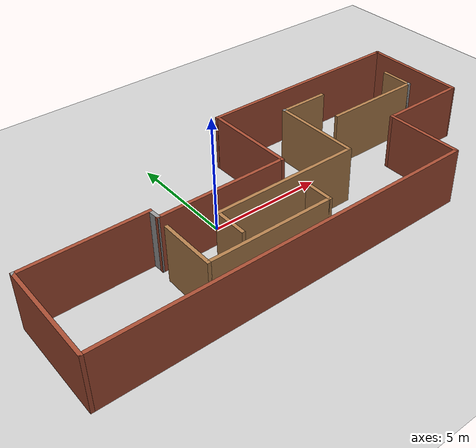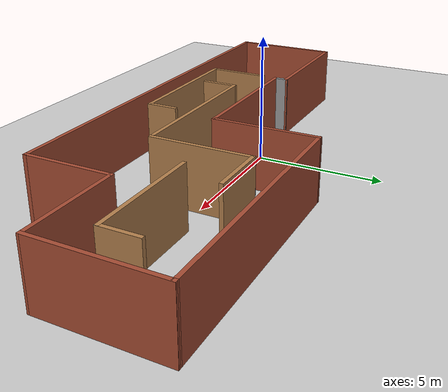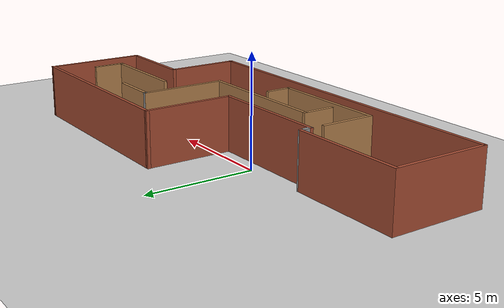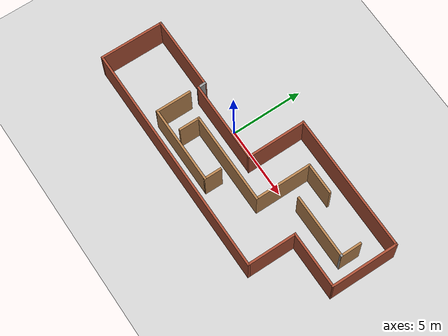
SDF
<sdf version="1.7">
 <world name="default">
  <light name="sun" type="directional">
   <pose>0 0 10 0 -0 0</pose>
   <diffuse>0.8 0.8 0.8 1</diffuse>
   <specular>0.2 0.2 0.2 1</specular>
   <attenuation>
    <range>1000</range>
    <constant>0.9</constant>
    <linear>0.01</linear>
    <quadratic>0.001</quadratic>
   </attenuation>
   <direction>-0.5 0.1 -0.9</direction>
   <spot><inner_angle>0</inner_angle><outer_angle>0</outer_angle><falloff>0</falloff></spot>
  </light>
  <model name="ground_plane">
   <static>1</static>
   <link name="link">
    <collision name="collision">
     <geometry><plane><normal>0 0 1</normal><size>100 100</size></plane></geometry>
     <surface><friction><ode><mu>100</mu><mu2>50</mu2></ode></friction></surface>
    </collision>
    <visual name="visual">
     <cast_shadows>0</cast_shadows>
     <geometry><plane><normal>0 0 1</normal><size>100 100</size></plane></geometry>
     <material>
      <script><uri>file://media/materials/scripts/gazebo.material</uri><name>Gazebo/Grey</name></script>
     </material>
    </visual>
   </link>
  </model>
  <gravity>0 0 -9.8</gravity>
  <magnetic_field>6e-06 2.3e-05 -4.2e-05</magnetic_field>
  <atmosphere type="adiabatic"/>
  <physics type="ode">
   <max_step_size>0.001</max_step_size>
   <real_time_factor>1</real_time_factor>
   <real_time_update_rate>1000</real_time_update_rate>
  </physics>
  <scene><ambient>0.4 0.4 0.4 1</ambient><background>0.7 0.7 0.7 1</background><shadows>1</shadows></scene>
  <audio><device>default</device></audio>
  <spherical_coordinates>
   <surface_model>EARTH_WGS84</surface_model>
   <latitude_deg>0</latitude_deg>
   <longitude_deg>0</longitude_deg>
   <elevation>0</elevation>
   <heading_deg>0</heading_deg>
  </spherical_coordinates>
  <model name="simulation_map1108">
   <pose>2.06606 -0.585061 0 0 -0 0</pose>
   <link name="Wall_0">
    <collision name="Wall_0_Collision">
     <geometry><box><size>4.20826 0.15 2.5</size></box></geometry>
     <pose>0 0 1.25 0 -0 0</pose>
    </collision>
    <visual name="Wall_0_Visual">
     <pose>0 0 1.25 0 -0 0</pose>
     <geometry><box><size>4.20826 0.15 2.5</size></box></geometry>
     <material>
      <script><uri>file://media/materials/scripts/gazebo.material</uri><name>Gazebo/Bricks</name></script>
      <ambient>1 1 1 1</ambient>
     </material>
     <meta><layer>0</layer></meta>
    </visual>
    <pose>0.611053 1.91327 0 0 -0 1.57727</pose>
   </link>
   <link name="Wall_1">
    <collision name="Wall_1_Collision">
     <geometry><box><size>9.66194 0.15 2.5</size></box></geometry>
     <pose>0 0 1.25 0 -0 0</pose>
    </collision>
    <visual name="Wall_1_Visual">
     <pose>0 0 1.25 0 -0 0</pose>
     <geometry><box><size>9.66194 0.15 2.5</size></box></geometry>
     <material>
      <script><uri>file://media/materials/scripts/gazebo.material</uri><name>Gazebo/Bricks</name></script>
      <ambient>1 1 1 1</ambient>
     </material>
     <meta><layer>0</layer></meta>
    </visual>
    <pose>5.34388 3.95392 0 0 -0 0.002432</pose>
   </link>
   <link name="Wall_10">
    <collision name="Wall_10_Collision">
     <geometry><box><size>5.75 0.15 2.5</size></box></geometry>
     <pose>0 0 1.25 0 -0 0</pose>
    </collision>
    <visual name="Wall_10_Visual">
     <pose>0 0 1.25 0 -0 0</pose>
     <geometry><box><size>5.75 0.15 2.5</size></box></geometry>
     <material>
      <script><uri>file://media/materials/scripts/gazebo.material</uri><name>Gazebo/Bricks</name></script>
      <ambient>1 1 1 1</ambient>
     </material>
     <meta><layer>0</layer></meta>
    </visual>
    <pose>-2.19238 -0.106322 0 0 -0 0</pose>
   </link>
   <link name="Wall_14">
    <collision name="Wall_14_Collision">
     <geometry><box><size>2.5 0.15 2.5</size></box></geometry>
     <pose>0 0 1.25 0 -0 0</pose>
    </collision>
    <visual name="Wall_14_Visual">
     <pose>0 0 1.25 0 -0 0</pose>
     <geometry><box><size>2.5 0.15 2.5</size></box></geometry>
     <material>
      <script><uri>file://media/materials/scripts/gazebo.material</uri><name>Gazebo/Wood</name></script>
      <ambient>1 1 1 1</ambient>
     </material>
     <meta><layer>0</layer></meta>
    </visual>
    <pose>-5.04686 -1.9242 0 0 -0 -1.5708</pose>
   </link>
   <link name="Wall_15">
    <collision name="Wall_15_Collision">
     <geometry><box><size>5.5 0.15 2.5</size></box></geometry>
     <pose>0 0 1.25 0 -0 0</pose>
    </collision>
    <visual name="Wall_15_Visual">
     <pose>0 0 1.25 0 -0 0</pose>
     <geometry><box><size>5.5 0.15 2.5</size></box></geometry>
     <material>
      <script><uri>file://media/materials/scripts/gazebo.material</uri><name>Gazebo/Wood</name></script>
      <ambient>1 1 1 1</ambient>
     </material>
     <meta><layer>0</layer></meta>
    </visual>
    <pose>-2.37186 -3.0992 0 0 -0 0</pose>
   </link>
   <link name="Wall_16">
    <collision name="Wall_16_Collision">
     <geometry><box><size>1.25 0.15 2.5</size></box></geometry>
     <pose>0 0 1.25 0 -0 0</pose>
    </collision>
    <visual name="Wall_16_Visual">
     <pose>0 0 1.25 0 -0 0</pose>
     <geometry><box><size>1.25 0.15 2.5</size></box></geometry>
     <material>
      <script><uri>file://media/materials/scripts/gazebo.material</uri><name>Gazebo/Wood</name></script>
      <ambient>1 1 1 1</ambient>
     </material>
     <meta><layer>0</layer></meta>
    </visual>
    <pose>0.303141 -2.5492 0 0 -0 1.5708</pose>
   </link>
   <link name="Wall_18">
    <collision name="Wall_18_Collision">
     <geometry><box><size>1.5 0.15 2.5</size></box></geometry>
     <pose>0 0 1.25 0 -0 0</pose>
    </collision>
    <visual name="Wall_18_Visual">
     <pose>0 0 1.25 0 -0 0</pose>
     <geometry><box><size>1.5 0.15 2.5</size></box></geometry>
     <material>
      <script><uri>file://media/materials/scripts/gazebo.material</uri><name>Gazebo/Wood</name></script>
      <ambient>1 1 1 1</ambient>
     </material>
     <meta><layer>0</layer></meta>
    </visual>
    <pose>-3.23664 -1.90453 0 0 -0 1.5708</pose>
   </link>
   <link name="Wall_19">
    <collision name="Wall_19_Collision">
     <geometry><box><size>6.5 0.15 2.5</size></box></geometry>
     <pose>0 0 1.25 0 -0 0</pose>
    </collision>
    <visual name="Wall_19_Visual">
     <pose>0 0 1.25 0 -0 0</pose>
     <geometry><box><size>6.5 0.15 2.5</size></box></geometry>
     <material>
      <script><uri>file://media/materials/scripts/gazebo.material</uri><name>Gazebo/Wood</name></script>
      <ambient>1 1 1 1</ambient>
     </material>
     <meta><layer>0</layer></meta>
    </visual>
    <pose>-0.061637 -1.22954 0 0 -0 0</pose>
   </link>
   <link name="Wall_2">
    <collision name="Wall_2_Collision">
     <geometry><box><size>4.73135 0.15 2.5</size></box></geometry>
     <pose>0 0 1.25 0 -0 0</pose>
    </collision>
    <visual name="Wall_2_Visual">
     <pose>0 0 1.25 0 -0 0</pose>
     <geometry><box><size>4.73135 0.15 2.5</size></box></geometry>
     <material>
      <script><uri>file://media/materials/scripts/gazebo.material</uri><name>Gazebo/Bricks</name></script>
      <ambient>1 1 1 1</ambient>
     </material>
     <meta><layer>0</layer></meta>
    </visual>
    <pose>10.0998 1.67484 0 0 -0 -1.57516</pose>
   </link>
   <link name="Wall_20">
    <collision name="Wall_20_Collision">
     <geometry><box><size>4 0.15 2.5</size></box></geometry>
     <pose>0 0 1.25 0 -0 0</pose>
    </collision>
    <visual name="Wall_20_Visual">
     <pose>0 0 1.25 0 -0 0</pose>
     <geometry><box><size>4 0.15 2.5</size></box></geometry>
     <material>
      <script><uri>file://media/materials/scripts/gazebo.material</uri><name>Gazebo/Wood</name></script>
      <ambient>1 1 1 1</ambient>
     </material>
     <meta><layer>0</layer></meta>
    </visual>
    <pose>3.11336 0.695466 0 0 -0 1.5708</pose>
   </link>
   <link name="Wall_21">
    <collision name="Wall_21_Collision">
     <geometry><box><size>0.16 0.15 2.5</size></box></geometry>
     <pose>0 0 1.25 0 -0 0</pose>
    </collision>
    <visual name="Wall_21_Visual">
     <pose>0 0 1.25 0 -0 0</pose>
     <geometry><box><size>0.16 0.15 2.5</size></box></geometry>
     <material>
      <script><uri>file://media/materials/scripts/gazebo.material</uri><name>Gazebo/Grey</name></script>
      <ambient>1 1 1 1</ambient>
     </material>
     <meta><layer>0</layer></meta>
    </visual>
    <pose>3.11836 2.62047 0 0 -0 0</pose>
   </link>
   <link name="Wall_22">
    <collision name="Wall_22_Collision">
     <geometry><box><size>2.25 0.15 2.5</size></box></geometry>
     <pose>0 0 1.25 0 -0 0</pose>
    </collision>
    <visual name="Wall_22_Visual">
     <pose>0 0 1.25 0 -0 0</pose>
     <geometry><box><size>2.25 0.15 2.5</size></box></geometry>
     <material>
      <script><uri>file://media/materials/scripts/gazebo.material</uri><name>Gazebo/Wood</name></script>
      <ambient>1 1 1 1</ambient>
     </material>
     <meta><layer>0</layer></meta>
    </visual>
    <pose>4.17336 2.62047 0 0 -0 0</pose>
   </link>
   <link name="Wall_24">
    <collision name="Wall_24_Collision">
     <geometry><box><size>4.5 0.15 2.5</size></box></geometry>
     <pose>0 0 1.25 0 -0 0</pose>
    </collision>
    <visual name="Wall_24_Visual">
     <pose>0 0 1.25 0 -0 0</pose>
     <geometry><box><size>4.5 0.15 2.5</size></box></geometry>
     <material>
      <script><uri>file://media/materials/scripts/gazebo.material</uri><name>Gazebo/Wood</name></script>
      <ambient>1 1 1 1</ambient>
     </material>
     <meta><layer>0</layer></meta>
    </visual>
    <pose>6.68209 0.88 0 0 -0 0</pose>
   </link>
   <link name="Wall_25">
    <collision name="Wall_25_Collision">
     <geometry><box><size>0.16 0.15 2.5</size></box></geometry>
     <pose>0 0 1.25 0 -0 0</pose>
    </collision>
    <visual name="Wall_25_Visual">
     <pose>0 0 1.25 0 -0 0</pose>
     <geometry><box><size>0.16 0.15 2.5</size></box></geometry>
     <material>
      <script><uri>file://media/materials/scripts/gazebo.material</uri><name>Gazebo/Grey</name></script>
      <ambient>1 1 1 1</ambient>
     </material>
     <meta><layer>0</layer></meta>
    </visual>
    <pose>8.86209 0.88 0 0 -0 0</pose>
   </link>
   <link name="Wall_26">
    <collision name="Wall_26_Collision">
     <geometry><box><size>1.5 0.15 2.5</size></box></geometry>
     <pose>0 0 1.25 0 -0 0</pose>
    </collision>
    <visual name="Wall_26_Visual">
     <pose>0 0 1.25 0 -0 0</pose>
     <geometry><box><size>1.5 0.15 2.5</size></box></geometry>
     <material>
      <script><uri>file://media/materials/scripts/gazebo.material</uri><name>Gazebo/Wood</name></script>
      <ambient>1 1 1 1</ambient>
     </material>
     <meta><layer>0</layer></meta>
    </visual>
    <pose>8.86709 1.555 0 0 -0 1.5708</pose>
   </link>
   <link name="Wall_3">
    <collision name="Wall_3_Collision">
     <geometry><box><size>4 0.15 2.5</size></box></geometry>
     <pose>0 0 1.25 0 -0 0</pose>
    </collision>
    <visual name="Wall_3_Visual">
     <pose>0 0 1.25 0 -0 0</pose>
     <geometry><box><size>4 0.15 2.5</size></box></geometry>
     <material>
      <script><uri>file://media/materials/scripts/gazebo.material</uri><name>Gazebo/Bricks</name></script>
      <ambient>1 1 1 1</ambient>
     </material>
     <meta><layer>0</layer></meta>
    </visual>
    <pose>8.16484 -0.615816 0 0 -0 3.14159</pose>
   </link>
   <link name="Wall_4">
    <collision name="Wall_4_Collision">
     <geometry><box><size>3.5 0.15 2.5</size></box></geometry>
     <pose>0 0 1.25 0 -0 0</pose>
    </collision>
    <visual name="Wall_4_Visual">
     <pose>0 0 1.25 0 -0 0</pose>
     <geometry><box><size>3.5 0.15 2.5</size></box></geometry>
     <material>
      <script><uri>file://media/materials/scripts/gazebo.material</uri><name>Gazebo/Bricks</name></script>
      <ambient>1 1 1 1</ambient>
     </material>
     <meta><layer>0</layer></meta>
    </visual>
    <pose>6.23984 -2.29082 0 0 -0 -1.5708</pose>
   </link>
   <link name="Wall_5">
    <collision name="Wall_5_Collision">
     <geometry><box><size>16.5 0.15 2.5</size></box></geometry>
     <pose>0 0 1.25 0 -0 0</pose>
    </collision>
    <visual name="Wall_5_Visual">
     <pose>0 0 1.25 0 -0 0</pose>
     <geometry><box><size>16.5 0.15 2.5</size></box></geometry>
     <material>
      <script><uri>file://media/materials/scripts/gazebo.material</uri><name>Gazebo/Bricks</name></script>
      <ambient>1 1 1 1</ambient>
     </material>
     <meta><layer>0</layer></meta>
    </visual>
    <pose>-1.93516 -3.96582 0 0 -0 3.14159</pose>
   </link>
   <link name="Wall_6">
    <collision name="Wall_6_Collision">
     <geometry><box><size>4.5 0.15 2.5</size></box></geometry>
     <pose>0 0 1.25 0 -0 0</pose>
    </collision>
    <visual name="Wall_6_Visual">
     <pose>0 0 1.25 0 -0 0</pose>
     <geometry><box><size>4.5 0.15 2.5</size></box></geometry>
     <material>
      <script><uri>file://media/materials/scripts/gazebo.material</uri><name>Gazebo/Bricks</name></script>
      <ambient>1 1 1 1</ambient>
     </material>
     <meta><layer>0</layer></meta>
    </visual>
    <pose>-10.1102 -1.79082 0 0 -0 1.5708</pose>
   </link>
   <link name="Wall_7">
    <collision name="Wall_7_Collision">
     <geometry><box><size>0.15 0.15 2.5</size></box></geometry>
     <pose>0 0 1.25 0 -0 0</pose>
    </collision>
    <visual name="Wall_7_Visual">
     <pose>0 0 1.25 0 -0 0</pose>
     <geometry><box><size>0.15 0.15 2.5</size></box></geometry>
     <material>
      <script><uri>file://media/materials/scripts/gazebo.material</uri><name>Gazebo/Grey</name></script>
      <ambient>1 1 1 1</ambient>
     </material>
     <meta><layer>0</layer></meta>
    </visual>
    <pose>-10.1102 0.384184 0 0 -0 0</pose>
   </link>
   <link name="Wall_8">
    <collision name="Wall_8_Collision">
     <geometry><box><size>5.25 0.15 2.5</size></box></geometry>
     <pose>0 0 1.25 0 -0 0</pose>
    </collision>
    <visual name="Wall_8_Visual">
     <pose>0 0 1.25 0 -0 0</pose>
     <geometry><box><size>5.25 0.15 2.5</size></box></geometry>
     <material>
      <script><uri>file://media/materials/scripts/gazebo.material</uri><name>Gazebo/Bricks</name></script>
      <ambient>1 1 1 1</ambient>
     </material>
     <meta><layer>0</layer></meta>
    </visual>
    <pose>-7.56016 0.384184 0 0 -0 0</pose>
   </link>
   <link name="Wall_9">
    <collision name="Wall_9_Collision">
     <geometry><box><size>0.640511 0.15 2.5</size></box></geometry>
     <pose>0 0 1.25 0 -0 0</pose>
    </collision>
    <visual name="Wall_9_Visual">
     <pose>0 0 1.25 0 -0 0</pose>
     <geometry><box><size>0.640511 0.15 2.5</size></box></geometry>
     <material>
      <script><uri>file://media/materials/scripts/gazebo.material</uri><name>Gazebo/Grey</name></script>
      <ambient>1 1 1 1</ambient>
     </material>
     <meta><layer>0</layer></meta>
    </visual>
    <pose>-4.99627 0.138931 0 0 -0 -1.51421</pose>
   </link>
   <static>1</static>
  </model>
 </world>
</sdf>
